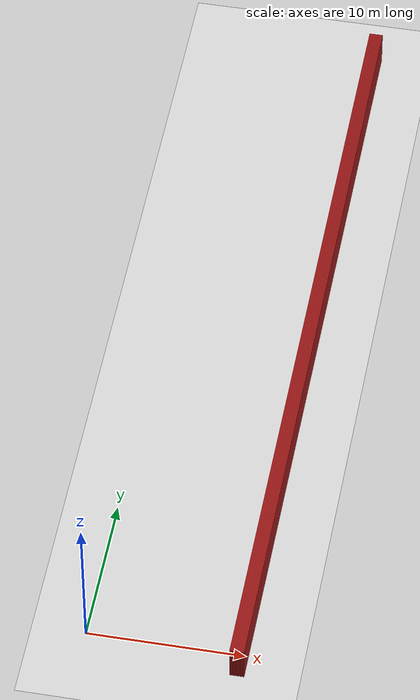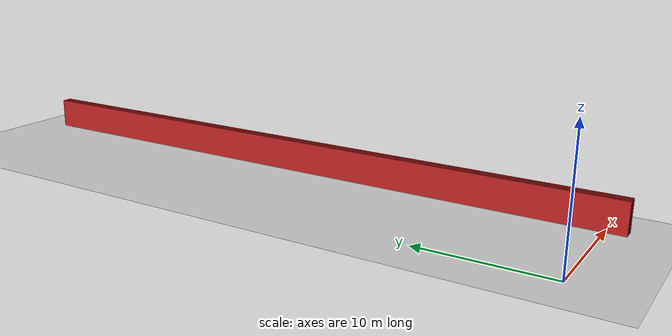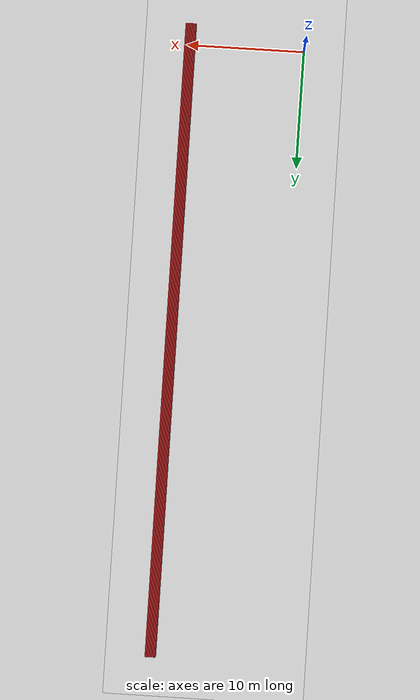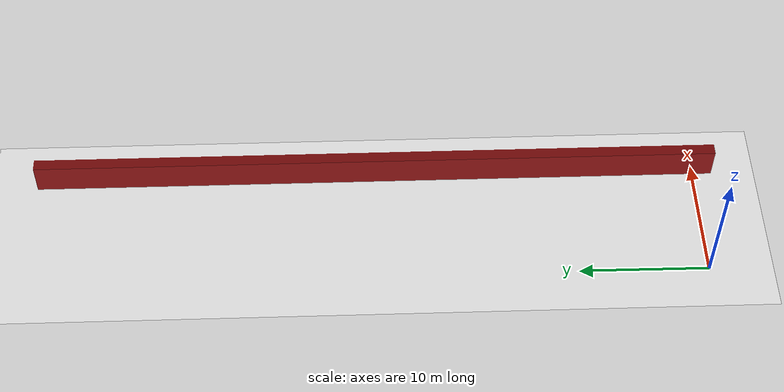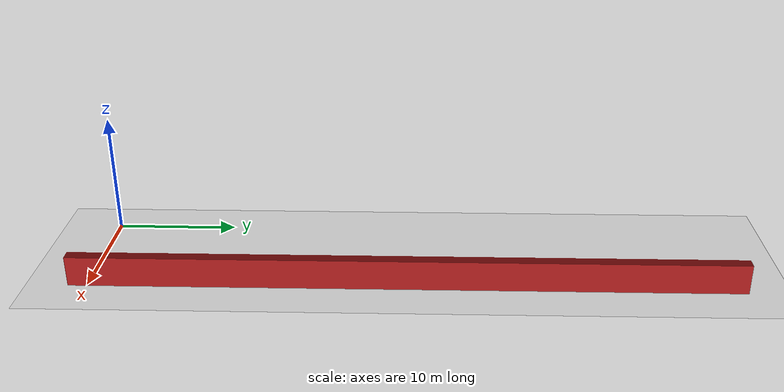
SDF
<sdf version="1.4">
 <world name="1_wall">
  <model name="ground_plane">
   <static>1</static>
   <link name="link">
    <collision name="collision">
     <geometry><plane><normal>0 0 1</normal><size>1000 1000</size></plane></geometry>
     <surface><friction><ode><mu>100</mu><mu2>50</mu2></ode></friction></surface>
    </collision>
    <visual name="visual">
     <cast_shadows>0</cast_shadows>
     <geometry><plane><normal>0 0 1</normal><size>10000 10000</size></plane></geometry>
     <material>
      <script><uri>file://media/materials/scripts/gazebo.material</uri><name>Gazebo/Grey</name></script>
     </material>
    </visual>
    <velocity_decay><linear>0</linear><angular>0</angular></velocity_decay>
   </link>
  </model>
  <model name="Wall_216">
   <static>1</static>
   <link name="Wall_216">
    <collision name="Wall_Collision_216">
     <geometry><box><size>53.65 0.05 2.5</size></box></geometry>
     <pose>0 0 1.25 0 -0 0</pose>
    </collision>
    <visual name="Wall_Visual_216">
     <pose>0 0 1.25 0 -0 0</pose>
     <geometry><box><size>53.65 0.05 2.5</size></box></geometry>
     <material>
      <script><uri>file://media/materials/scripts/gazebo.material</uri><name>Gazebo/Red</name></script>
     </material>
    </visual>
    <velocity_decay><linear>0</linear><angular>0</angular></velocity_decay>
    <pose>9.3 25.3 0 0 0 1.5707963267948966</pose>
   </link>
  </model>
  <model name="Wall_217">
   <static>1</static>
   <link name="Wall_217">
    <collision name="Wall_Collision_217">
     <geometry><box><size>53.65 0.05 2.5</size></box></geometry>
     <pose>0 0 1.25 0 -0 0</pose>
    </collision>
    <visual name="Wall_Visual_217">
     <pose>0 0 1.25 0 -0 0</pose>
     <geometry><box><size>53.65 0.05 2.5</size></box></geometry>
     <material>
      <script><uri>file://media/materials/scripts/gazebo.material</uri><name>Gazebo/Red</name></script>
     </material>
    </visual>
    <velocity_decay><linear>0</linear><angular>0</angular></velocity_decay>
    <pose>9.35 25.3 0 0 0 1.5707963267948966</pose>
   </link>
  </model>
  <model name="Wall_218">
   <static>1</static>
   <link name="Wall_218">
    <collision name="Wall_Collision_218">
     <geometry><box><size>53.65 0.05 2.5</size></box></geometry>
     <pose>0 0 1.25 0 -0 0</pose>
    </collision>
    <visual name="Wall_Visual_218">
     <pose>0 0 1.25 0 -0 0</pose>
     <geometry><box><size>53.65 0.05 2.5</size></box></geometry>
     <material>
      <script><uri>file://media/materials/scripts/gazebo.material</uri><name>Gazebo/Red</name></script>
     </material>
    </visual>
    <velocity_decay><linear>0</linear><angular>0</angular></velocity_decay>
    <pose>9.4 25.3 0 0 0 1.5707963267948966</pose>
   </link>
  </model>
  <model name="Wall_219">
   <static>1</static>
   <link name="Wall_219">
    <collision name="Wall_Collision_219">
     <geometry><box><size>53.65 0.05 2.5</size></box></geometry>
     <pose>0 0 1.25 0 -0 0</pose>
    </collision>
    <visual name="Wall_Visual_219">
     <pose>0 0 1.25 0 -0 0</pose>
     <geometry><box><size>53.65 0.05 2.5</size></box></geometry>
     <material>
      <script><uri>file://media/materials/scripts/gazebo.material</uri><name>Gazebo/Red</name></script>
     </material>
    </visual>
    <velocity_decay><linear>0</linear><angular>0</angular></velocity_decay>
    <pose>9.45 25.3 0 0 0 1.5707963267948966</pose>
   </link>
  </model>
  <model name="Wall_220">
   <static>1</static>
   <link name="Wall_220">
    <collision name="Wall_Collision_220">
     <geometry><box><size>53.65 0.05 2.5</size></box></geometry>
     <pose>0 0 1.25 0 -0 0</pose>
    </collision>
    <visual name="Wall_Visual_220">
     <pose>0 0 1.25 0 -0 0</pose>
     <geometry><box><size>53.65 0.05 2.5</size></box></geometry>
     <material>
      <script><uri>file://media/materials/scripts/gazebo.material</uri><name>Gazebo/Red</name></script>
     </material>
    </visual>
    <velocity_decay><linear>0</linear><angular>0</angular></velocity_decay>
    <pose>9.5 25.3 0 0 0 1.5707963267948966</pose>
   </link>
  </model>
  <model name="Wall_221">
   <static>1</static>
   <link name="Wall_221">
    <collision name="Wall_Collision_221">
     <geometry><box><size>53.65 0.05 2.5</size></box></geometry>
     <pose>0 0 1.25 0 -0 0</pose>
    </collision>
    <visual name="Wall_Visual_221">
     <pose>0 0 1.25 0 -0 0</pose>
     <geometry><box><size>53.65 0.05 2.5</size></box></geometry>
     <material>
      <script><uri>file://media/materials/scripts/gazebo.material</uri><name>Gazebo/Red</name></script>
     </material>
    </visual>
    <velocity_decay><linear>0</linear><angular>0</angular></velocity_decay>
    <pose>9.55 25.3 0 0 0 1.5707963267948966</pose>
   </link>
  </model>
  <model name="Wall_222">
   <static>1</static>
   <link name="Wall_222">
    <collision name="Wall_Collision_222">
     <geometry><box><size>53.65 0.05 2.5</size></box></geometry>
     <pose>0 0 1.25 0 -0 0</pose>
    </collision>
    <visual name="Wall_Visual_222">
     <pose>0 0 1.25 0 -0 0</pose>
     <geometry><box><size>53.65 0.05 2.5</size></box></geometry>
     <material>
      <script><uri>file://media/materials/scripts/gazebo.material</uri><name>Gazebo/Red</name></script>
     </material>
    </visual>
    <velocity_decay><linear>0</linear><angular>0</angular></velocity_decay>
    <pose>9.6 25.3 0 0 0 1.5707963267948966</pose>
   </link>
  </model>
  <model name="Wall_223">
   <static>1</static>
   <link name="Wall_223">
    <collision name="Wall_Collision_223">
     <geometry><box><size>53.65 0.05 2.5</size></box></geometry>
     <pose>0 0 1.25 0 -0 0</pose>
    </collision>
    <visual name="Wall_Visual_223">
     <pose>0 0 1.25 0 -0 0</pose>
     <geometry><box><size>53.65 0.05 2.5</size></box></geometry>
     <material>
      <script><uri>file://media/materials/scripts/gazebo.material</uri><name>Gazebo/Red</name></script>
     </material>
    </visual>
    <velocity_decay><linear>0</linear><angular>0</angular></velocity_decay>
    <pose>9.65 25.3 0 0 0 1.5707963267948966</pose>
   </link>
  </model>
  <model name="Wall_224">
   <static>1</static>
   <link name="Wall_224">
    <collision name="Wall_Collision_224">
     <geometry><box><size>53.65 0.05 2.5</size></box></geometry>
     <pose>0 0 1.25 0 -0 0</pose>
    </collision>
    <visual name="Wall_Visual_224">
     <pose>0 0 1.25 0 -0 0</pose>
     <geometry><box><size>53.65 0.05 2.5</size></box></geometry>
     <material>
      <script><uri>file://media/materials/scripts/gazebo.material</uri><name>Gazebo/Red</name></script>
     </material>
    </visual>
    <velocity_decay><linear>0</linear><angular>0</angular></velocity_decay>
    <pose>9.7 25.3 0 0 0 1.5707963267948966</pose>
   </link>
  </model>
  <model name="Wall_225">
   <static>1</static>
   <link name="Wall_225">
    <collision name="Wall_Collision_225">
     <geometry><box><size>53.65 0.05 2.5</size></box></geometry>
     <pose>0 0 1.25 0 -0 0</pose>
    </collision>
    <visual name="Wall_Visual_225">
     <pose>0 0 1.25 0 -0 0</pose>
     <geometry><box><size>53.65 0.05 2.5</size></box></geometry>
     <material>
      <script><uri>file://media/materials/scripts/gazebo.material</uri><name>Gazebo/Red</name></script>
     </material>
    </visual>
    <velocity_decay><linear>0</linear><angular>0</angular></velocity_decay>
    <pose>9.75 25.3 0 0 0 1.5707963267948966</pose>
   </link>
  </model>
  <model name="Wall_226">
   <static>1</static>
   <link name="Wall_226">
    <collision name="Wall_Collision_226">
     <geometry><box><size>53.65 0.05 2.5</size></box></geometry>
     <pose>0 0 1.25 0 -0 0</pose>
    </collision>
    <visual name="Wall_Visual_226">
     <pose>0 0 1.25 0 -0 0</pose>
     <geometry><box><size>53.65 0.05 2.5</size></box></geometry>
     <material>
      <script><uri>file://media/materials/scripts/gazebo.material</uri><name>Gazebo/Red</name></script>
     </material>
    </visual>
    <velocity_decay><linear>0</linear><angular>0</angular></velocity_decay>
    <pose>9.8 25.3 0 0 0 1.5707963267948966</pose>
   </link>
  </model>
  <model name="Wall_227">
   <static>1</static>
   <link name="Wall_227">
    <collision name="Wall_Collision_227">
     <geometry><box><size>53.65 0.05 2.5</size></box></geometry>
     <pose>0 0 1.25 0 -0 0</pose>
    </collision>
    <visual name="Wall_Visual_227">
     <pose>0 0 1.25 0 -0 0</pose>
     <geometry><box><size>53.65 0.05 2.5</size></box></geometry>
     <material>
      <script><uri>file://media/materials/scripts/gazebo.material</uri><name>Gazebo/Red</name></script>
     </material>
    </visual>
    <velocity_decay><linear>0</linear><angular>0</angular></velocity_decay>
    <pose>9.85 25.3 0 0 0 1.5707963267948966</pose>
   </link>
  </model>
  <model name="Wall_228">
   <static>1</static>
   <link name="Wall_228">
    <collision name="Wall_Collision_228">
     <geometry><box><size>53.65 0.05 2.5</size></box></geometry>
     <pose>0 0 1.25 0 -0 0</pose>
    </collision>
    <visual name="Wall_Visual_228">
     <pose>0 0 1.25 0 -0 0</pose>
     <geometry><box><size>53.65 0.05 2.5</size></box></geometry>
     <material>
      <script><uri>file://media/materials/scripts/gazebo.material</uri><name>Gazebo/Red</name></script>
     </material>
    </visual>
    <velocity_decay><linear>0</linear><angular>0</angular></velocity_decay>
    <pose>9.9 25.3 0 0 0 1.5707963267948966</pose>
   </link>
  </model>
  <model name="Wall_229">
   <static>1</static>
   <link name="Wall_229">
    <collision name="Wall_Collision_229">
     <geometry><box><size>53.65 0.05 2.5</size></box></geometry>
     <pose>0 0 1.25 0 -0 0</pose>
    </collision>
    <visual name="Wall_Visual_229">
     <pose>0 0 1.25 0 -0 0</pose>
     <geometry><box><size>53.65 0.05 2.5</size></box></geometry>
     <material>
      <script><uri>file://media/materials/scripts/gazebo.material</uri><name>Gazebo/Red</name></script>
     </material>
    </visual>
    <velocity_decay><linear>0</linear><angular>0</angular></velocity_decay>
    <pose>9.95 25.3 0 0 0 1.5707963267948966</pose>
   </link>
  </model>
  <model name="Wall_230">
   <static>1</static>
   <link name="Wall_230">
    <collision name="Wall_Collision_230">
     <geometry><box><size>53.65 0.05 2.5</size></box></geometry>
     <pose>0 0 1.25 0 -0 0</pose>
    </collision>
    <visual name="Wall_Visual_230">
     <pose>0 0 1.25 0 -0 0</pose>
     <geometry><box><size>53.65 0.05 2.5</size></box></geometry>
     <material>
      <script><uri>file://media/materials/scripts/gazebo.material</uri><name>Gazebo/Red</name></script>
     </material>
    </visual>
    <velocity_decay><linear>0</linear><angular>0</angular></velocity_decay>
    <pose>10.0 25.3 0 0 0 1.5707963267948966</pose>
   </link>
  </model>
  <model name="Wall_231">
   <static>1</static>
   <link name="Wall_231">
    <collision name="Wall_Collision_231">
     <geometry><box><size>53.65 0.05 2.5</size></box></geometry>
     <pose>0 0 1.25 0 -0 0</pose>
    </collision>
    <visual name="Wall_Visual_231">
     <pose>0 0 1.25 0 -0 0</pose>
     <geometry><box><size>53.65 0.05 2.5</size></box></geometry>
     <material>
      <script><uri>file://media/materials/scripts/gazebo.material</uri><name>Gazebo/Red</name></script>
     </material>
    </visual>
    <velocity_decay><linear>0</linear><angular>0</angular></velocity_decay>
    <pose>10.05 25.3 0 0 0 1.5707963267948966</pose>
   </link>
  </model>
  <model name="Wall_232">
   <static>1</static>
   <link name="Wall_232">
    <collision name="Wall_Collision_232">
     <geometry><box><size>53.65 0.05 2.5</size></box></geometry>
     <pose>0 0 1.25 0 -0 0</pose>
    </collision>
    <visual name="Wall_Visual_232">
     <pose>0 0 1.25 0 -0 0</pose>
     <geometry><box><size>53.65 0.05 2.5</size></box></geometry>
     <material>
      <script><uri>file://media/materials/scripts/gazebo.material</uri><name>Gazebo/Red</name></script>
     </material>
    </visual>
    <velocity_decay><linear>0</linear><angular>0</angular></velocity_decay>
    <pose>10.1 25.3 0 0 0 1.5707963267948966</pose>
   </link>
  </model>
  <model name="Wall_233">
   <static>1</static>
   <link name="Wall_233">
    <collision name="Wall_Collision_233">
     <geometry><box><size>53.65 0.05 2.5</size></box></geometry>
     <pose>0 0 1.25 0 -0 0</pose>
    </collision>
    <visual name="Wall_Visual_233">
     <pose>0 0 1.25 0 -0 0</pose>
     <geometry><box><size>53.65 0.05 2.5</size></box></geometry>
     <material>
      <script><uri>file://media/materials/scripts/gazebo.material</uri><name>Gazebo/Red</name></script>
     </material>
    </visual>
    <velocity_decay><linear>0</linear><angular>0</angular></velocity_decay>
    <pose>10.15 25.3 0 0 0 1.5707963267948966</pose>
   </link>
  </model>
 </world>
</sdf>
